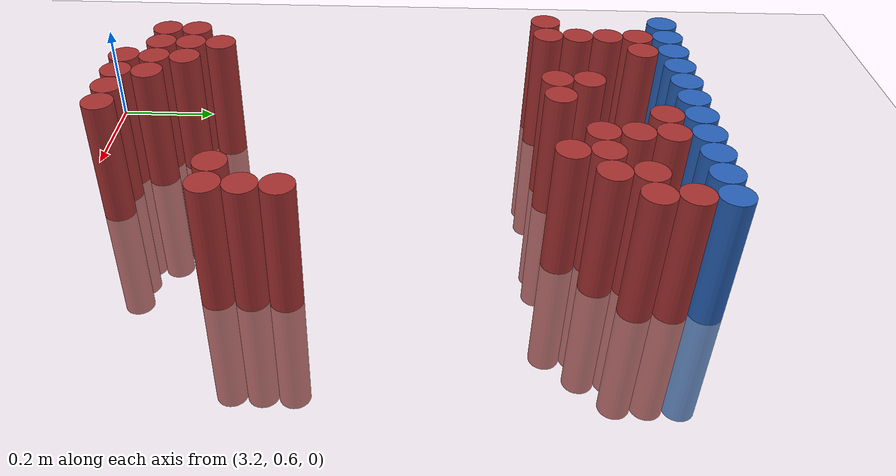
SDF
<sdf version="1.6">
 <world name="default">
  <model name="ground_plane">
   <static>1</static>
   <link name="link">
    <collision name="collision">
     <geometry><plane><normal>0 0 1</normal><size>100 100</size></plane></geometry>
     <surface><friction><ode><mu>100</mu><mu2>50</mu2></ode></friction></surface>
    </collision>
    <visual name="visual">
     <cast_shadows>0</cast_shadows>
     <geometry><plane><normal>0 0 1</normal><size>100 100</size></plane></geometry>
     <material>
      <script><uri>file://media/materials/scripts/gazebo.material</uri><name>Gazebo/Grey</name></script>
     </material>
    </visual>
   </link>
  </model>
  <model name="unit_cylinder_114">
   <static>1</static>
   <pose>3.210000 1.770000 0.000000 0.000000 0.000000 0.000000</pose>
   <link name="link">
    <inertial>
     <mass>1</mass>
     <inertia><ixx>0.145833</ixx><ixy>0</ixy><ixz>0</ixz><iyy>0.145833</iyy><iyz>0</iyz><izz>0.125</izz></inertia>
    </inertial>
    <collision name="collision">
     <geometry><cylinder><radius>0.030000</radius><length>0.5</length></cylinder></geometry>
    </collision>
    <visual name="visual">
     <geometry><cylinder><radius>0.030000</radius><length>0.5</length></cylinder></geometry>
     <material>
      <ambient>0.152000 0.379000 0.720000 1</ambient>
      <diffuse>0.152000 0.379000 0.720000 1</diffuse>
     </material>
     <material>
      <script><name>Gazebo/Grey</name><uri>file://media/materials/scripts/gazebo.material</uri></script>
     </material>
    </visual>
   </link>
  </model>
  <model name="unit_cylinder_115">
   <static>1</static>
   <pose>3.270000 1.770000 0.000000 0.000000 0.000000 0.000000</pose>
   <link name="link">
    <inertial>
     <mass>1</mass>
     <inertia><ixx>0.145833</ixx><ixy>0</ixy><ixz>0</ixz><iyy>0.145833</iyy><iyz>0</iyz><izz>0.125</izz></inertia>
    </inertial>
    <collision name="collision">
     <geometry><cylinder><radius>0.030000</radius><length>0.5</length></cylinder></geometry>
    </collision>
    <visual name="visual">
     <geometry><cylinder><radius>0.030000</radius><length>0.5</length></cylinder></geometry>
     <material>
      <ambient>0.152000 0.379000 0.720000 1</ambient>
      <diffuse>0.152000 0.379000 0.720000 1</diffuse>
     </material>
     <material>
      <script><name>Gazebo/Grey</name><uri>file://media/materials/scripts/gazebo.material</uri></script>
     </material>
    </visual>
   </link>
  </model>
  <model name="unit_cylinder_116">
   <static>1</static>
   <pose>3.330000 1.770000 0.000000 0.000000 0.000000 0.000000</pose>
   <link name="link">
    <inertial>
     <mass>1</mass>
     <inertia><ixx>0.145833</ixx><ixy>0</ixy><ixz>0</ixz><iyy>0.145833</iyy><iyz>0</iyz><izz>0.125</izz></inertia>
    </inertial>
    <collision name="collision">
     <geometry><cylinder><radius>0.030000</radius><length>0.5</length></cylinder></geometry>
    </collision>
    <visual name="visual">
     <geometry><cylinder><radius>0.030000</radius><length>0.5</length></cylinder></geometry>
     <material>
      <ambient>0.152000 0.379000 0.720000 1</ambient>
      <diffuse>0.152000 0.379000 0.720000 1</diffuse>
     </material>
     <material>
      <script><name>Gazebo/Grey</name><uri>file://media/materials/scripts/gazebo.material</uri></script>
     </material>
    </visual>
   </link>
  </model>
  <model name="unit_cylinder_117">
   <static>1</static>
   <pose>3.390000 1.770000 0.000000 0.000000 0.000000 0.000000</pose>
   <link name="link">
    <inertial>
     <mass>1</mass>
     <inertia><ixx>0.145833</ixx><ixy>0</ixy><ixz>0</ixz><iyy>0.145833</iyy><iyz>0</iyz><izz>0.125</izz></inertia>
    </inertial>
    <collision name="collision">
     <geometry><cylinder><radius>0.030000</radius><length>0.5</length></cylinder></geometry>
    </collision>
    <visual name="visual">
     <geometry><cylinder><radius>0.030000</radius><length>0.5</length></cylinder></geometry>
     <material>
      <ambient>0.152000 0.379000 0.720000 1</ambient>
      <diffuse>0.152000 0.379000 0.720000 1</diffuse>
     </material>
     <material>
      <script><name>Gazebo/Grey</name><uri>file://media/materials/scripts/gazebo.material</uri></script>
     </material>
    </visual>
   </link>
  </model>
  <model name="unit_cylinder_118">
   <static>1</static>
   <pose>3.450000 1.770000 0.000000 0.000000 0.000000 0.000000</pose>
   <link name="link">
    <inertial>
     <mass>1</mass>
     <inertia><ixx>0.145833</ixx><ixy>0</ixy><ixz>0</ixz><iyy>0.145833</iyy><iyz>0</iyz><izz>0.125</izz></inertia>
    </inertial>
    <collision name="collision">
     <geometry><cylinder><radius>0.030000</radius><length>0.5</length></cylinder></geometry>
    </collision>
    <visual name="visual">
     <geometry><cylinder><radius>0.030000</radius><length>0.5</length></cylinder></geometry>
     <material>
      <ambient>0.152000 0.379000 0.720000 1</ambient>
      <diffuse>0.152000 0.379000 0.720000 1</diffuse>
     </material>
     <material>
      <script><name>Gazebo/Grey</name><uri>file://media/materials/scripts/gazebo.material</uri></script>
     </material>
    </visual>
   </link>
  </model>
  <model name="unit_cylinder_119">
   <static>1</static>
   <pose>3.510000 1.770000 0.000000 0.000000 0.000000 0.000000</pose>
   <link name="link">
    <inertial>
     <mass>1</mass>
     <inertia><ixx>0.145833</ixx><ixy>0</ixy><ixz>0</ixz><iyy>0.145833</iyy><iyz>0</iyz><izz>0.125</izz></inertia>
    </inertial>
    <collision name="collision">
     <geometry><cylinder><radius>0.030000</radius><length>0.5</length></cylinder></geometry>
    </collision>
    <visual name="visual">
     <geometry><cylinder><radius>0.030000</radius><length>0.5</length></cylinder></geometry>
     <material>
      <ambient>0.152000 0.379000 0.720000 1</ambient>
      <diffuse>0.152000 0.379000 0.720000 1</diffuse>
     </material>
     <material>
      <script><name>Gazebo/Grey</name><uri>file://media/materials/scripts/gazebo.material</uri></script>
     </material>
    </visual>
   </link>
  </model>
  <model name="unit_cylinder_120">
   <static>1</static>
   <pose>3.570000 1.770000 0.000000 0.000000 0.000000 0.000000</pose>
   <link name="link">
    <inertial>
     <mass>1</mass>
     <inertia><ixx>0.145833</ixx><ixy>0</ixy><ixz>0</ixz><iyy>0.145833</iyy><iyz>0</iyz><izz>0.125</izz></inertia>
    </inertial>
    <collision name="collision">
     <geometry><cylinder><radius>0.030000</radius><length>0.5</length></cylinder></geometry>
    </collision>
    <visual name="visual">
     <geometry><cylinder><radius>0.030000</radius><length>0.5</length></cylinder></geometry>
     <material>
      <ambient>0.152000 0.379000 0.720000 1</ambient>
      <diffuse>0.152000 0.379000 0.720000 1</diffuse>
     </material>
     <material>
      <script><name>Gazebo/Grey</name><uri>file://media/materials/scripts/gazebo.material</uri></script>
     </material>
    </visual>
   </link>
  </model>
  <model name="unit_cylinder_121">
   <static>1</static>
   <pose>3.630000 1.770000 0.000000 0.000000 0.000000 0.000000</pose>
   <link name="link">
    <inertial>
     <mass>1</mass>
     <inertia><ixx>0.145833</ixx><ixy>0</ixy><ixz>0</ixz><iyy>0.145833</iyy><iyz>0</iyz><izz>0.125</izz></inertia>
    </inertial>
    <collision name="collision">
     <geometry><cylinder><radius>0.030000</radius><length>0.5</length></cylinder></geometry>
    </collision>
    <visual name="visual">
     <geometry><cylinder><radius>0.030000</radius><length>0.5</length></cylinder></geometry>
     <material>
      <ambient>0.152000 0.379000 0.720000 1</ambient>
      <diffuse>0.152000 0.379000 0.720000 1</diffuse>
     </material>
     <material>
      <script><name>Gazebo/Grey</name><uri>file://media/materials/scripts/gazebo.material</uri></script>
     </material>
    </visual>
   </link>
  </model>
  <model name="unit_cylinder_122">
   <static>1</static>
   <pose>3.690000 1.770000 0.000000 0.000000 0.000000 0.000000</pose>
   <link name="link">
    <inertial>
     <mass>1</mass>
     <inertia><ixx>0.145833</ixx><ixy>0</ixy><ixz>0</ixz><iyy>0.145833</iyy><iyz>0</iyz><izz>0.125</izz></inertia>
    </inertial>
    <collision name="collision">
     <geometry><cylinder><radius>0.030000</radius><length>0.5</length></cylinder></geometry>
    </collision>
    <visual name="visual">
     <geometry><cylinder><radius>0.030000</radius><length>0.5</length></cylinder></geometry>
     <material>
      <ambient>0.152000 0.379000 0.720000 1</ambient>
      <diffuse>0.152000 0.379000 0.720000 1</diffuse>
     </material>
     <material>
      <script><name>Gazebo/Grey</name><uri>file://media/materials/scripts/gazebo.material</uri></script>
     </material>
    </visual>
   </link>
  </model>
  <model name="unit_cylinder_123">
   <static>1</static>
   <pose>3.750000 1.770000 0.000000 0.000000 0.000000 0.000000</pose>
   <link name="link">
    <inertial>
     <mass>1</mass>
     <inertia><ixx>0.145833</ixx><ixy>0</ixy><ixz>0</ixz><iyy>0.145833</iyy><iyz>0</iyz><izz>0.125</izz></inertia>
    </inertial>
    <collision name="collision">
     <geometry><cylinder><radius>0.030000</radius><length>0.5</length></cylinder></geometry>
    </collision>
    <visual name="visual">
     <geometry><cylinder><radius>0.030000</radius><length>0.5</length></cylinder></geometry>
     <material>
      <ambient>0.152000 0.379000 0.720000 1</ambient>
      <diffuse>0.152000 0.379000 0.720000 1</diffuse>
     </material>
     <material>
      <script><name>Gazebo/Grey</name><uri>file://media/materials/scripts/gazebo.material</uri></script>
     </material>
    </visual>
   </link>
  </model>
  <model name="unit_cylinder_124">
   <static>1</static>
   <pose>3.810000 1.770000 0.000000 0.000000 0.000000 0.000000</pose>
   <link name="link">
    <inertial>
     <mass>1</mass>
     <inertia><ixx>0.145833</ixx><ixy>0</ixy><ixz>0</ixz><iyy>0.145833</iyy><iyz>0</iyz><izz>0.125</izz></inertia>
    </inertial>
    <collision name="collision">
     <geometry><cylinder><radius>0.030000</radius><length>0.5</length></cylinder></geometry>
    </collision>
    <visual name="visual">
     <geometry><cylinder><radius>0.030000</radius><length>0.5</length></cylinder></geometry>
     <material>
      <ambient>0.152000 0.379000 0.720000 1</ambient>
      <diffuse>0.152000 0.379000 0.720000 1</diffuse>
     </material>
     <material>
      <script><name>Gazebo/Grey</name><uri>file://media/materials/scripts/gazebo.material</uri></script>
     </material>
    </visual>
   </link>
  </model>
  <model name="unit_cylinder_129">
   <static>1</static>
   <pose>3.270000 1.710000 0.000000 0.000000 0.000000 0.000000</pose>
   <link name="link">
    <inertial>
     <mass>1</mass>
     <inertia><ixx>0.145833</ixx><ixy>0</ixy><ixz>0</ixz><iyy>0.145833</iyy><iyz>0</iyz><izz>0.125</izz></inertia>
    </inertial>
    <collision name="collision">
     <geometry><cylinder><radius>0.030000</radius><length>0.5</length></cylinder></geometry>
    </collision>
    <visual name="visual">
     <geometry><cylinder><radius>0.030000</radius><length>0.5</length></cylinder></geometry>
     <material>
      <ambient>0.648000 0.192000 0.192000 1</ambient>
      <diffuse>0.648000 0.192000 0.192000 1</diffuse>
     </material>
     <material>
      <script><name>Gazebo/Grey</name><uri>file://media/materials/scripts/gazebo.material</uri></script>
     </material>
    </visual>
   </link>
  </model>
  <model name="unit_cylinder_130">
   <static>1</static>
   <pose>3.330000 1.710000 0.000000 0.000000 0.000000 0.000000</pose>
   <link name="link">
    <inertial>
     <mass>1</mass>
     <inertia><ixx>0.145833</ixx><ixy>0</ixy><ixz>0</ixz><iyy>0.145833</iyy><iyz>0</iyz><izz>0.125</izz></inertia>
    </inertial>
    <collision name="collision">
     <geometry><cylinder><radius>0.030000</radius><length>0.5</length></cylinder></geometry>
    </collision>
    <visual name="visual">
     <geometry><cylinder><radius>0.030000</radius><length>0.5</length></cylinder></geometry>
     <material>
      <ambient>0.648000 0.192000 0.192000 1</ambient>
      <diffuse>0.648000 0.192000 0.192000 1</diffuse>
     </material>
     <material>
      <script><name>Gazebo/Grey</name><uri>file://media/materials/scripts/gazebo.material</uri></script>
     </material>
    </visual>
   </link>
  </model>
  <model name="unit_cylinder_131">
   <static>1</static>
   <pose>3.570000 1.710000 0.000000 0.000000 0.000000 0.000000</pose>
   <link name="link">
    <inertial>
     <mass>1</mass>
     <inertia><ixx>0.145833</ixx><ixy>0</ixy><ixz>0</ixz><iyy>0.145833</iyy><iyz>0</iyz><izz>0.125</izz></inertia>
    </inertial>
    <collision name="collision">
     <geometry><cylinder><radius>0.030000</radius><length>0.5</length></cylinder></geometry>
    </collision>
    <visual name="visual">
     <geometry><cylinder><radius>0.030000</radius><length>0.5</length></cylinder></geometry>
     <material>
      <ambient>0.648000 0.192000 0.192000 1</ambient>
      <diffuse>0.648000 0.192000 0.192000 1</diffuse>
     </material>
     <material>
      <script><name>Gazebo/Grey</name><uri>file://media/materials/scripts/gazebo.material</uri></script>
     </material>
    </visual>
   </link>
  </model>
  <model name="unit_cylinder_132">
   <static>1</static>
   <pose>3.630000 1.710000 0.000000 0.000000 0.000000 0.000000</pose>
   <link name="link">
    <inertial>
     <mass>1</mass>
     <inertia><ixx>0.145833</ixx><ixy>0</ixy><ixz>0</ixz><iyy>0.145833</iyy><iyz>0</iyz><izz>0.125</izz></inertia>
    </inertial>
    <collision name="collision">
     <geometry><cylinder><radius>0.030000</radius><length>0.5</length></cylinder></geometry>
    </collision>
    <visual name="visual">
     <geometry><cylinder><radius>0.030000</radius><length>0.5</length></cylinder></geometry>
     <material>
      <ambient>0.648000 0.192000 0.192000 1</ambient>
      <diffuse>0.648000 0.192000 0.192000 1</diffuse>
     </material>
     <material>
      <script><name>Gazebo/Grey</name><uri>file://media/materials/scripts/gazebo.material</uri></script>
     </material>
    </visual>
   </link>
  </model>
  <model name="unit_cylinder_133">
   <static>1</static>
   <pose>3.810000 1.710000 0.000000 0.000000 0.000000 0.000000</pose>
   <link name="link">
    <inertial>
     <mass>1</mass>
     <inertia><ixx>0.145833</ixx><ixy>0</ixy><ixz>0</ixz><iyy>0.145833</iyy><iyz>0</iyz><izz>0.125</izz></inertia>
    </inertial>
    <collision name="collision">
     <geometry><cylinder><radius>0.030000</radius><length>0.5</length></cylinder></geometry>
    </collision>
    <visual name="visual">
     <geometry><cylinder><radius>0.030000</radius><length>0.5</length></cylinder></geometry>
     <material>
      <ambient>0.648000 0.192000 0.192000 1</ambient>
      <diffuse>0.648000 0.192000 0.192000 1</diffuse>
     </material>
     <material>
      <script><name>Gazebo/Grey</name><uri>file://media/materials/scripts/gazebo.material</uri></script>
     </material>
    </visual>
   </link>
  </model>
  <model name="unit_cylinder_137">
   <static>1</static>
   <pose>3.270000 1.650000 0.000000 0.000000 0.000000 0.000000</pose>
   <link name="link">
    <inertial>
     <mass>1</mass>
     <inertia><ixx>0.145833</ixx><ixy>0</ixy><ixz>0</ixz><iyy>0.145833</iyy><iyz>0</iyz><izz>0.125</izz></inertia>
    </inertial>
    <collision name="collision">
     <geometry><cylinder><radius>0.030000</radius><length>0.5</length></cylinder></geometry>
    </collision>
    <visual name="visual">
     <geometry><cylinder><radius>0.030000</radius><length>0.5</length></cylinder></geometry>
     <material>
      <ambient>0.648000 0.192000 0.192000 1</ambient>
      <diffuse>0.648000 0.192000 0.192000 1</diffuse>
     </material>
     <material>
      <script><name>Gazebo/Grey</name><uri>file://media/materials/scripts/gazebo.material</uri></script>
     </material>
    </visual>
   </link>
  </model>
  <model name="unit_cylinder_138">
   <static>1</static>
   <pose>3.630000 1.650000 0.000000 0.000000 0.000000 0.000000</pose>
   <link name="link">
    <inertial>
     <mass>1</mass>
     <inertia><ixx>0.145833</ixx><ixy>0</ixy><ixz>0</ixz><iyy>0.145833</iyy><iyz>0</iyz><izz>0.125</izz></inertia>
    </inertial>
    <collision name="collision">
     <geometry><cylinder><radius>0.030000</radius><length>0.5</length></cylinder></geometry>
    </collision>
    <visual name="visual">
     <geometry><cylinder><radius>0.030000</radius><length>0.5</length></cylinder></geometry>
     <material>
      <ambient>0.648000 0.192000 0.192000 1</ambient>
      <diffuse>0.648000 0.192000 0.192000 1</diffuse>
     </material>
     <material>
      <script><name>Gazebo/Grey</name><uri>file://media/materials/scripts/gazebo.material</uri></script>
     </material>
    </visual>
   </link>
  </model>
  <model name="unit_cylinder_139">
   <static>1</static>
   <pose>3.750000 1.650000 0.000000 0.000000 0.000000 0.000000</pose>
   <link name="link">
    <inertial>
     <mass>1</mass>
     <inertia><ixx>0.145833</ixx><ixy>0</ixy><ixz>0</ixz><iyy>0.145833</iyy><iyz>0</iyz><izz>0.125</izz></inertia>
    </inertial>
    <collision name="collision">
     <geometry><cylinder><radius>0.030000</radius><length>0.5</length></cylinder></geometry>
    </collision>
    <visual name="visual">
     <geometry><cylinder><radius>0.030000</radius><length>0.5</length></cylinder></geometry>
     <material>
      <ambient>0.648000 0.192000 0.192000 1</ambient>
      <diffuse>0.648000 0.192000 0.192000 1</diffuse>
     </material>
     <material>
      <script><name>Gazebo/Grey</name><uri>file://media/materials/scripts/gazebo.material</uri></script>
     </material>
    </visual>
   </link>
  </model>
  <model name="unit_cylinder_140">
   <static>1</static>
   <pose>3.810000 1.650000 0.000000 0.000000 0.000000 0.000000</pose>
   <link name="link">
    <inertial>
     <mass>1</mass>
     <inertia><ixx>0.145833</ixx><ixy>0</ixy><ixz>0</ixz><iyy>0.145833</iyy><iyz>0</iyz><izz>0.125</izz></inertia>
    </inertial>
    <collision name="collision">
     <geometry><cylinder><radius>0.030000</radius><length>0.5</length></cylinder></geometry>
    </collision>
    <visual name="visual">
     <geometry><cylinder><radius>0.030000</radius><length>0.5</length></cylinder></geometry>
     <material>
      <ambient>0.648000 0.192000 0.192000 1</ambient>
      <diffuse>0.648000 0.192000 0.192000 1</diffuse>
     </material>
     <material>
      <script><name>Gazebo/Grey</name><uri>file://media/materials/scripts/gazebo.material</uri></script>
     </material>
    </visual>
   </link>
  </model>
  <model name="unit_cylinder_143">
   <static>1</static>
   <pose>3.270000 1.590000 0.000000 0.000000 0.000000 0.000000</pose>
   <link name="link">
    <inertial>
     <mass>1</mass>
     <inertia><ixx>0.145833</ixx><ixy>0</ixy><ixz>0</ixz><iyy>0.145833</iyy><iyz>0</iyz><izz>0.125</izz></inertia>
    </inertial>
    <collision name="collision">
     <geometry><cylinder><radius>0.030000</radius><length>0.5</length></cylinder></geometry>
    </collision>
    <visual name="visual">
     <geometry><cylinder><radius>0.030000</radius><length>0.5</length></cylinder></geometry>
     <material>
      <ambient>0.648000 0.192000 0.192000 1</ambient>
      <diffuse>0.648000 0.192000 0.192000 1</diffuse>
     </material>
     <material>
      <script><name>Gazebo/Grey</name><uri>file://media/materials/scripts/gazebo.material</uri></script>
     </material>
    </visual>
   </link>
  </model>
  <model name="unit_cylinder_144">
   <static>1</static>
   <pose>3.450000 1.590000 0.000000 0.000000 0.000000 0.000000</pose>
   <link name="link">
    <inertial>
     <mass>1</mass>
     <inertia><ixx>0.145833</ixx><ixy>0</ixy><ixz>0</ixz><iyy>0.145833</iyy><iyz>0</iyz><izz>0.125</izz></inertia>
    </inertial>
    <collision name="collision">
     <geometry><cylinder><radius>0.030000</radius><length>0.5</length></cylinder></geometry>
    </collision>
    <visual name="visual">
     <geometry><cylinder><radius>0.030000</radius><length>0.5</length></cylinder></geometry>
     <material>
      <ambient>0.648000 0.192000 0.192000 1</ambient>
      <diffuse>0.648000 0.192000 0.192000 1</diffuse>
     </material>
     <material>
      <script><name>Gazebo/Grey</name><uri>file://media/materials/scripts/gazebo.material</uri></script>
     </material>
    </visual>
   </link>
  </model>
  <model name="unit_cylinder_145">
   <static>1</static>
   <pose>3.630000 1.590000 0.000000 0.000000 0.000000 0.000000</pose>
   <link name="link">
    <inertial>
     <mass>1</mass>
     <inertia><ixx>0.145833</ixx><ixy>0</ixy><ixz>0</ixz><iyy>0.145833</iyy><iyz>0</iyz><izz>0.125</izz></inertia>
    </inertial>
    <collision name="collision">
     <geometry><cylinder><radius>0.030000</radius><length>0.5</length></cylinder></geometry>
    </collision>
    <visual name="visual">
     <geometry><cylinder><radius>0.030000</radius><length>0.5</length></cylinder></geometry>
     <material>
      <ambient>0.648000 0.192000 0.192000 1</ambient>
      <diffuse>0.648000 0.192000 0.192000 1</diffuse>
     </material>
     <material>
      <script><name>Gazebo/Grey</name><uri>file://media/materials/scripts/gazebo.material</uri></script>
     </material>
    </visual>
   </link>
  </model>
  <model name="unit_cylinder_146">
   <static>1</static>
   <pose>3.690000 1.590000 0.000000 0.000000 0.000000 0.000000</pose>
   <link name="link">
    <inertial>
     <mass>1</mass>
     <inertia><ixx>0.145833</ixx><ixy>0</ixy><ixz>0</ixz><iyy>0.145833</iyy><iyz>0</iyz><izz>0.125</izz></inertia>
    </inertial>
    <collision name="collision">
     <geometry><cylinder><radius>0.030000</radius><length>0.5</length></cylinder></geometry>
    </collision>
    <visual name="visual">
     <geometry><cylinder><radius>0.030000</radius><length>0.5</length></cylinder></geometry>
     <material>
      <ambient>0.648000 0.192000 0.192000 1</ambient>
      <diffuse>0.648000 0.192000 0.192000 1</diffuse>
     </material>
     <material>
      <script><name>Gazebo/Grey</name><uri>file://media/materials/scripts/gazebo.material</uri></script>
     </material>
    </visual>
   </link>
  </model>
  <model name="unit_cylinder_147">
   <static>1</static>
   <pose>3.750000 1.590000 0.000000 0.000000 0.000000 0.000000</pose>
   <link name="link">
    <inertial>
     <mass>1</mass>
     <inertia><ixx>0.145833</ixx><ixy>0</ixy><ixz>0</ixz><iyy>0.145833</iyy><iyz>0</iyz><izz>0.125</izz></inertia>
    </inertial>
    <collision name="collision">
     <geometry><cylinder><radius>0.030000</radius><length>0.5</length></cylinder></geometry>
    </collision>
    <visual name="visual">
     <geometry><cylinder><radius>0.030000</radius><length>0.5</length></cylinder></geometry>
     <material>
      <ambient>0.648000 0.192000 0.192000 1</ambient>
      <diffuse>0.648000 0.192000 0.192000 1</diffuse>
     </material>
     <material>
      <script><name>Gazebo/Grey</name><uri>file://media/materials/scripts/gazebo.material</uri></script>
     </material>
    </visual>
   </link>
  </model>
  <model name="unit_cylinder_150">
   <static>1</static>
   <pose>3.210000 1.530000 0.000000 0.000000 0.000000 0.000000</pose>
   <link name="link">
    <inertial>
     <mass>1</mass>
     <inertia><ixx>0.145833</ixx><ixy>0</ixy><ixz>0</ixz><iyy>0.145833</iyy><iyz>0</iyz><izz>0.125</izz></inertia>
    </inertial>
    <collision name="collision">
     <geometry><cylinder><radius>0.030000</radius><length>0.5</length></cylinder></geometry>
    </collision>
    <visual name="visual">
     <geometry><cylinder><radius>0.030000</radius><length>0.5</length></cylinder></geometry>
     <material>
      <ambient>0.648000 0.192000 0.192000 1</ambient>
      <diffuse>0.648000 0.192000 0.192000 1</diffuse>
     </material>
     <material>
      <script><name>Gazebo/Grey</name><uri>file://media/materials/scripts/gazebo.material</uri></script>
     </material>
    </visual>
   </link>
  </model>
  <model name="unit_cylinder_151">
   <static>1</static>
   <pose>3.270000 1.530000 0.000000 0.000000 0.000000 0.000000</pose>
   <link name="link">
    <inertial>
     <mass>1</mass>
     <inertia><ixx>0.145833</ixx><ixy>0</ixy><ixz>0</ixz><iyy>0.145833</iyy><iyz>0</iyz><izz>0.125</izz></inertia>
    </inertial>
    <collision name="collision">
     <geometry><cylinder><radius>0.030000</radius><length>0.5</length></cylinder></geometry>
    </collision>
    <visual name="visual">
     <geometry><cylinder><radius>0.030000</radius><length>0.5</length></cylinder></geometry>
     <material>
      <ambient>0.648000 0.192000 0.192000 1</ambient>
      <diffuse>0.648000 0.192000 0.192000 1</diffuse>
     </material>
     <material>
      <script><name>Gazebo/Grey</name><uri>file://media/materials/scripts/gazebo.material</uri></script>
     </material>
    </visual>
   </link>
  </model>
  <model name="unit_cylinder_152">
   <static>1</static>
   <pose>3.450000 1.530000 0.000000 0.000000 0.000000 0.000000</pose>
   <link name="link">
    <inertial>
     <mass>1</mass>
     <inertia><ixx>0.145833</ixx><ixy>0</ixy><ixz>0</ixz><iyy>0.145833</iyy><iyz>0</iyz><izz>0.125</izz></inertia>
    </inertial>
    <collision name="collision">
     <geometry><cylinder><radius>0.030000</radius><length>0.5</length></cylinder></geometry>
    </collision>
    <visual name="visual">
     <geometry><cylinder><radius>0.030000</radius><length>0.5</length></cylinder></geometry>
     <material>
      <ambient>0.648000 0.192000 0.192000 1</ambient>
      <diffuse>0.648000 0.192000 0.192000 1</diffuse>
     </material>
     <material>
      <script><name>Gazebo/Grey</name><uri>file://media/materials/scripts/gazebo.material</uri></script>
     </material>
    </visual>
   </link>
  </model>
  <model name="unit_cylinder_153">
   <static>1</static>
   <pose>3.510000 1.530000 0.000000 0.000000 0.000000 0.000000</pose>
   <link name="link">
    <inertial>
     <mass>1</mass>
     <inertia><ixx>0.145833</ixx><ixy>0</ixy><ixz>0</ixz><iyy>0.145833</iyy><iyz>0</iyz><izz>0.125</izz></inertia>
    </inertial>
    <collision name="collision">
     <geometry><cylinder><radius>0.030000</radius><length>0.5</length></cylinder></geometry>
    </collision>
    <visual name="visual">
     <geometry><cylinder><radius>0.030000</radius><length>0.5</length></cylinder></geometry>
     <material>
      <ambient>0.648000 0.192000 0.192000 1</ambient>
      <diffuse>0.648000 0.192000 0.192000 1</diffuse>
     </material>
     <material>
      <script><name>Gazebo/Grey</name><uri>file://media/materials/scripts/gazebo.material</uri></script>
     </material>
    </visual>
   </link>
  </model>
  <model name="unit_cylinder_154">
   <static>1</static>
   <pose>3.690000 1.530000 0.000000 0.000000 0.000000 0.000000</pose>
   <link name="link">
    <inertial>
     <mass>1</mass>
     <inertia><ixx>0.145833</ixx><ixy>0</ixy><ixz>0</ixz><iyy>0.145833</iyy><iyz>0</iyz><izz>0.125</izz></inertia>
    </inertial>
    <collision name="collision">
     <geometry><cylinder><radius>0.030000</radius><length>0.5</length></cylinder></geometry>
    </collision>
    <visual name="visual">
     <geometry><cylinder><radius>0.030000</radius><length>0.5</length></cylinder></geometry>
     <material>
      <ambient>0.648000 0.192000 0.192000 1</ambient>
      <diffuse>0.648000 0.192000 0.192000 1</diffuse>
     </material>
     <material>
      <script><name>Gazebo/Grey</name><uri>file://media/materials/scripts/gazebo.material</uri></script>
     </material>
    </visual>
   </link>
  </model>
  <model name="unit_cylinder_182">
   <static>1</static>
   <pose>3.810000 1.050000 0.000000 0.000000 0.000000 0.000000</pose>
   <link name="link">
    <inertial>
     <mass>1</mass>
     <inertia><ixx>0.145833</ixx><ixy>0</ixy><ixz>0</ixz><iyy>0.145833</iyy><iyz>0</iyz><izz>0.125</izz></inertia>
    </inertial>
    <collision name="collision">
     <geometry><cylinder><radius>0.030000</radius><length>0.5</length></cylinder></geometry>
    </collision>
    <visual name="visual">
     <geometry><cylinder><radius>0.030000</radius><length>0.5</length></cylinder></geometry>
     <material>
      <ambient>0.648000 0.192000 0.192000 1</ambient>
      <diffuse>0.648000 0.192000 0.192000 1</diffuse>
     </material>
     <material>
      <script><name>Gazebo/Grey</name><uri>file://media/materials/scripts/gazebo.material</uri></script>
     </material>
    </visual>
   </link>
  </model>
  <model name="unit_cylinder_188">
   <static>1</static>
   <pose>3.810000 0.990000 0.000000 0.000000 0.000000 0.000000</pose>
   <link name="link">
    <inertial>
     <mass>1</mass>
     <inertia><ixx>0.145833</ixx><ixy>0</ixy><ixz>0</ixz><iyy>0.145833</iyy><iyz>0</iyz><izz>0.125</izz></inertia>
    </inertial>
    <collision name="collision">
     <geometry><cylinder><radius>0.030000</radius><length>0.5</length></cylinder></geometry>
    </collision>
    <visual name="visual">
     <geometry><cylinder><radius>0.030000</radius><length>0.5</length></cylinder></geometry>
     <material>
      <ambient>0.648000 0.192000 0.192000 1</ambient>
      <diffuse>0.648000 0.192000 0.192000 1</diffuse>
     </material>
     <material>
      <script><name>Gazebo/Grey</name><uri>file://media/materials/scripts/gazebo.material</uri></script>
     </material>
    </visual>
   </link>
  </model>
  <model name="unit_cylinder_190">
   <static>1</static>
   <pose>3.750000 0.930000 0.000000 0.000000 0.000000 0.000000</pose>
   <link name="link">
    <inertial>
     <mass>1</mass>
     <inertia><ixx>0.145833</ixx><ixy>0</ixy><ixz>0</ixz><iyy>0.145833</iyy><iyz>0</iyz><izz>0.125</izz></inertia>
    </inertial>
    <collision name="collision">
     <geometry><cylinder><radius>0.030000</radius><length>0.5</length></cylinder></geometry>
    </collision>
    <visual name="visual">
     <geometry><cylinder><radius>0.030000</radius><length>0.5</length></cylinder></geometry>
     <material>
      <ambient>0.648000 0.192000 0.192000 1</ambient>
      <diffuse>0.648000 0.192000 0.192000 1</diffuse>
     </material>
     <material>
      <script><name>Gazebo/Grey</name><uri>file://media/materials/scripts/gazebo.material</uri></script>
     </material>
    </visual>
   </link>
  </model>
  <model name="unit_cylinder_191">
   <static>1</static>
   <pose>3.810000 0.930000 0.000000 0.000000 0.000000 0.000000</pose>
   <link name="link">
    <inertial>
     <mass>1</mass>
     <inertia><ixx>0.145833</ixx><ixy>0</ixy><ixz>0</ixz><iyy>0.145833</iyy><iyz>0</iyz><izz>0.125</izz></inertia>
    </inertial>
    <collision name="collision">
     <geometry><cylinder><radius>0.030000</radius><length>0.5</length></cylinder></geometry>
    </collision>
    <visual name="visual">
     <geometry><cylinder><radius>0.030000</radius><length>0.5</length></cylinder></geometry>
     <material>
      <ambient>0.648000 0.192000 0.192000 1</ambient>
      <diffuse>0.648000 0.192000 0.192000 1</diffuse>
     </material>
     <material>
      <script><name>Gazebo/Grey</name><uri>file://media/materials/scripts/gazebo.material</uri></script>
     </material>
    </visual>
   </link>
  </model>
  <model name="unit_cylinder_192">
   <static>1</static>
   <pose>3.330000 0.870000 0.000000 0.000000 0.000000 0.000000</pose>
   <link name="link">
    <inertial>
     <mass>1</mass>
     <inertia><ixx>0.145833</ixx><ixy>0</ixy><ixz>0</ixz><iyy>0.145833</iyy><iyz>0</iyz><izz>0.125</izz></inertia>
    </inertial>
    <collision name="collision">
     <geometry><cylinder><radius>0.030000</radius><length>0.5</length></cylinder></geometry>
    </collision>
    <visual name="visual">
     <geometry><cylinder><radius>0.030000</radius><length>0.5</length></cylinder></geometry>
     <material>
      <ambient>0.648000 0.192000 0.192000 1</ambient>
      <diffuse>0.648000 0.192000 0.192000 1</diffuse>
     </material>
     <material>
      <script><name>Gazebo/Grey</name><uri>file://media/materials/scripts/gazebo.material</uri></script>
     </material>
    </visual>
   </link>
  </model>
  <model name="unit_cylinder_195">
   <static>1</static>
   <pose>3.270000 0.810000 0.000000 0.000000 0.000000 0.000000</pose>
   <link name="link">
    <inertial>
     <mass>1</mass>
     <inertia><ixx>0.145833</ixx><ixy>0</ixy><ixz>0</ixz><iyy>0.145833</iyy><iyz>0</iyz><izz>0.125</izz></inertia>
    </inertial>
    <collision name="collision">
     <geometry><cylinder><radius>0.030000</radius><length>0.5</length></cylinder></geometry>
    </collision>
    <visual name="visual">
     <geometry><cylinder><radius>0.030000</radius><length>0.5</length></cylinder></geometry>
     <material>
      <ambient>0.648000 0.192000 0.192000 1</ambient>
      <diffuse>0.648000 0.192000 0.192000 1</diffuse>
     </material>
     <material>
      <script><name>Gazebo/Grey</name><uri>file://media/materials/scripts/gazebo.material</uri></script>
     </material>
    </visual>
   </link>
  </model>
  <model name="unit_cylinder_196">
   <static>1</static>
   <pose>3.330000 0.810000 0.000000 0.000000 0.000000 0.000000</pose>
   <link name="link">
    <inertial>
     <mass>1</mass>
     <inertia><ixx>0.145833</ixx><ixy>0</ixy><ixz>0</ixz><iyy>0.145833</iyy><iyz>0</iyz><izz>0.125</izz></inertia>
    </inertial>
    <collision name="collision">
     <geometry><cylinder><radius>0.030000</radius><length>0.5</length></cylinder></geometry>
    </collision>
    <visual name="visual">
     <geometry><cylinder><radius>0.030000</radius><length>0.5</length></cylinder></geometry>
     <material>
      <ambient>0.648000 0.192000 0.192000 1</ambient>
      <diffuse>0.648000 0.192000 0.192000 1</diffuse>
     </material>
     <material>
      <script><name>Gazebo/Grey</name><uri>file://media/materials/scripts/gazebo.material</uri></script>
     </material>
    </visual>
   </link>
  </model>
  <model name="unit_cylinder_197">
   <static>1</static>
   <pose>3.390000 0.810000 0.000000 0.000000 0.000000 0.000000</pose>
   <link name="link">
    <inertial>
     <mass>1</mass>
     <inertia><ixx>0.145833</ixx><ixy>0</ixy><ixz>0</ixz><iyy>0.145833</iyy><iyz>0</iyz><izz>0.125</izz></inertia>
    </inertial>
    <collision name="collision">
     <geometry><cylinder><radius>0.030000</radius><length>0.5</length></cylinder></geometry>
    </collision>
    <visual name="visual">
     <geometry><cylinder><radius>0.030000</radius><length>0.5</length></cylinder></geometry>
     <material>
      <ambient>0.648000 0.192000 0.192000 1</ambient>
      <diffuse>0.648000 0.192000 0.192000 1</diffuse>
     </material>
     <material>
      <script><name>Gazebo/Grey</name><uri>file://media/materials/scripts/gazebo.material</uri></script>
     </material>
    </visual>
   </link>
  </model>
  <model name="unit_cylinder_200">
   <static>1</static>
   <pose>3.270000 0.750000 0.000000 0.000000 0.000000 0.000000</pose>
   <link name="link">
    <inertial>
     <mass>1</mass>
     <inertia><ixx>0.145833</ixx><ixy>0</ixy><ixz>0</ixz><iyy>0.145833</iyy><iyz>0</iyz><izz>0.125</izz></inertia>
    </inertial>
    <collision name="collision">
     <geometry><cylinder><radius>0.030000</radius><length>0.5</length></cylinder></geometry>
    </collision>
    <visual name="visual">
     <geometry><cylinder><radius>0.030000</radius><length>0.5</length></cylinder></geometry>
     <material>
      <ambient>0.648000 0.192000 0.192000 1</ambient>
      <diffuse>0.648000 0.192000 0.192000 1</diffuse>
     </material>
     <material>
      <script><name>Gazebo/Grey</name><uri>file://media/materials/scripts/gazebo.material</uri></script>
     </material>
    </visual>
   </link>
  </model>
  <model name="unit_cylinder_201">
   <static>1</static>
   <pose>3.330000 0.750000 0.000000 0.000000 0.000000 0.000000</pose>
   <link name="link">
    <inertial>
     <mass>1</mass>
     <inertia><ixx>0.145833</ixx><ixy>0</ixy><ixz>0</ixz><iyy>0.145833</iyy><iyz>0</iyz><izz>0.125</izz></inertia>
    </inertial>
    <collision name="collision">
     <geometry><cylinder><radius>0.030000</radius><length>0.5</length></cylinder></geometry>
    </collision>
    <visual name="visual">
     <geometry><cylinder><radius>0.030000</radius><length>0.5</length></cylinder></geometry>
     <material>
      <ambient>0.648000 0.192000 0.192000 1</ambient>
      <diffuse>0.648000 0.192000 0.192000 1</diffuse>
     </material>
     <material>
      <script><name>Gazebo/Grey</name><uri>file://media/materials/scripts/gazebo.material</uri></script>
     </material>
    </visual>
   </link>
  </model>
  <model name="unit_cylinder_202">
   <static>1</static>
   <pose>3.390000 0.750000 0.000000 0.000000 0.000000 0.000000</pose>
   <link name="link">
    <inertial>
     <mass>1</mass>
     <inertia><ixx>0.145833</ixx><ixy>0</ixy><ixz>0</ixz><iyy>0.145833</iyy><iyz>0</iyz><izz>0.125</izz></inertia>
    </inertial>
    <collision name="collision">
     <geometry><cylinder><radius>0.030000</radius><length>0.5</length></cylinder></geometry>
    </collision>
    <visual name="visual">
     <geometry><cylinder><radius>0.030000</radius><length>0.5</length></cylinder></geometry>
     <material>
      <ambient>0.648000 0.192000 0.192000 1</ambient>
      <diffuse>0.648000 0.192000 0.192000 1</diffuse>
     </material>
     <material>
      <script><name>Gazebo/Grey</name><uri>file://media/materials/scripts/gazebo.material</uri></script>
     </material>
    </visual>
   </link>
  </model>
  <model name="unit_cylinder_203">
   <static>1</static>
   <pose>3.450000 0.750000 0.000000 0.000000 0.000000 0.000000</pose>
   <link name="link">
    <inertial>
     <mass>1</mass>
     <inertia><ixx>0.145833</ixx><ixy>0</ixy><ixz>0</ixz><iyy>0.145833</iyy><iyz>0</iyz><izz>0.125</izz></inertia>
    </inertial>
    <collision name="collision">
     <geometry><cylinder><radius>0.030000</radius><length>0.5</length></cylinder></geometry>
    </collision>
    <visual name="visual">
     <geometry><cylinder><radius>0.030000</radius><length>0.5</length></cylinder></geometry>
     <material>
      <ambient>0.648000 0.192000 0.192000 1</ambient>
      <diffuse>0.648000 0.192000 0.192000 1</diffuse>
     </material>
     <material>
      <script><name>Gazebo/Grey</name><uri>file://media/materials/scripts/gazebo.material</uri></script>
     </material>
    </visual>
   </link>
  </model>
  <model name="unit_cylinder_207">
   <static>1</static>
   <pose>3.390000 0.690000 0.000000 0.000000 0.000000 0.000000</pose>
   <link name="link">
    <inertial>
     <mass>1</mass>
     <inertia><ixx>0.145833</ixx><ixy>0</ixy><ixz>0</ixz><iyy>0.145833</iyy><iyz>0</iyz><izz>0.125</izz></inertia>
    </inertial>
    <collision name="collision">
     <geometry><cylinder><radius>0.030000</radius><length>0.5</length></cylinder></geometry>
    </collision>
    <visual name="visual">
     <geometry><cylinder><radius>0.030000</radius><length>0.5</length></cylinder></geometry>
     <material>
      <ambient>0.648000 0.192000 0.192000 1</ambient>
      <diffuse>0.648000 0.192000 0.192000 1</diffuse>
     </material>
     <material>
      <script><name>Gazebo/Grey</name><uri>file://media/materials/scripts/gazebo.material</uri></script>
     </material>
    </visual>
   </link>
  </model>
  <model name="unit_cylinder_208">
   <static>1</static>
   <pose>3.450000 0.690000 0.000000 0.000000 0.000000 0.000000</pose>
   <link name="link">
    <inertial>
     <mass>1</mass>
     <inertia><ixx>0.145833</ixx><ixy>0</ixy><ixz>0</ixz><iyy>0.145833</iyy><iyz>0</iyz><izz>0.125</izz></inertia>
    </inertial>
    <collision name="collision">
     <geometry><cylinder><radius>0.030000</radius><length>0.5</length></cylinder></geometry>
    </collision>
    <visual name="visual">
     <geometry><cylinder><radius>0.030000</radius><length>0.5</length></cylinder></geometry>
     <material>
      <ambient>0.648000 0.192000 0.192000 1</ambient>
      <diffuse>0.648000 0.192000 0.192000 1</diffuse>
     </material>
     <material>
      <script><name>Gazebo/Grey</name><uri>file://media/materials/scripts/gazebo.material</uri></script>
     </material>
    </visual>
   </link>
  </model>
  <model name="unit_cylinder_209">
   <static>1</static>
   <pose>3.510000 0.690000 0.000000 0.000000 0.000000 0.000000</pose>
   <link name="link">
    <inertial>
     <mass>1</mass>
     <inertia><ixx>0.145833</ixx><ixy>0</ixy><ixz>0</ixz><iyy>0.145833</iyy><iyz>0</iyz><izz>0.125</izz></inertia>
    </inertial>
    <collision name="collision">
     <geometry><cylinder><radius>0.030000</radius><length>0.5</length></cylinder></geometry>
    </collision>
    <visual name="visual">
     <geometry><cylinder><radius>0.030000</radius><length>0.5</length></cylinder></geometry>
     <material>
      <ambient>0.648000 0.192000 0.192000 1</ambient>
      <diffuse>0.648000 0.192000 0.192000 1</diffuse>
     </material>
     <material>
      <script><name>Gazebo/Grey</name><uri>file://media/materials/scripts/gazebo.material</uri></script>
     </material>
    </visual>
   </link>
  </model>
  <model name="unit_cylinder_210">
   <static>1</static>
   <pose>3.570000 0.690000 0.000000 0.000000 0.000000 0.000000</pose>
   <link name="link">
    <inertial>
     <mass>1</mass>
     <inertia><ixx>0.145833</ixx><ixy>0</ixy><ixz>0</ixz><iyy>0.145833</iyy><iyz>0</iyz><izz>0.125</izz></inertia>
    </inertial>
    <collision name="collision">
     <geometry><cylinder><radius>0.030000</radius><length>0.5</length></cylinder></geometry>
    </collision>
    <visual name="visual">
     <geometry><cylinder><radius>0.030000</radius><length>0.5</length></cylinder></geometry>
     <material>
      <ambient>0.648000 0.192000 0.192000 1</ambient>
      <diffuse>0.648000 0.192000 0.192000 1</diffuse>
     </material>
     <material>
      <script><name>Gazebo/Grey</name><uri>file://media/materials/scripts/gazebo.material</uri></script>
     </material>
    </visual>
   </link>
  </model>
 </world>
</sdf>
